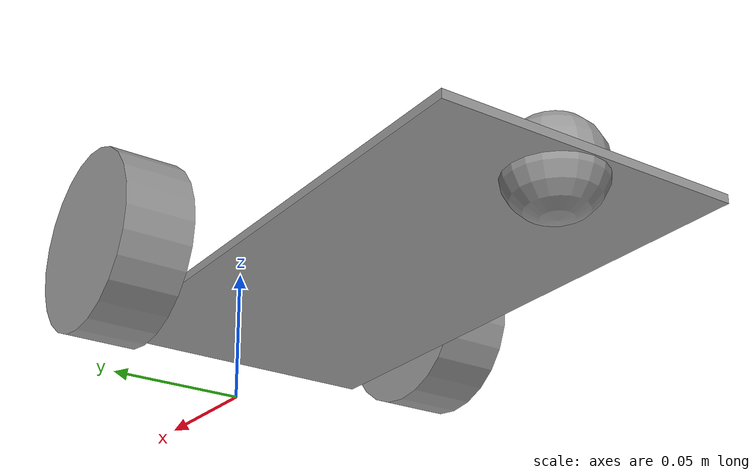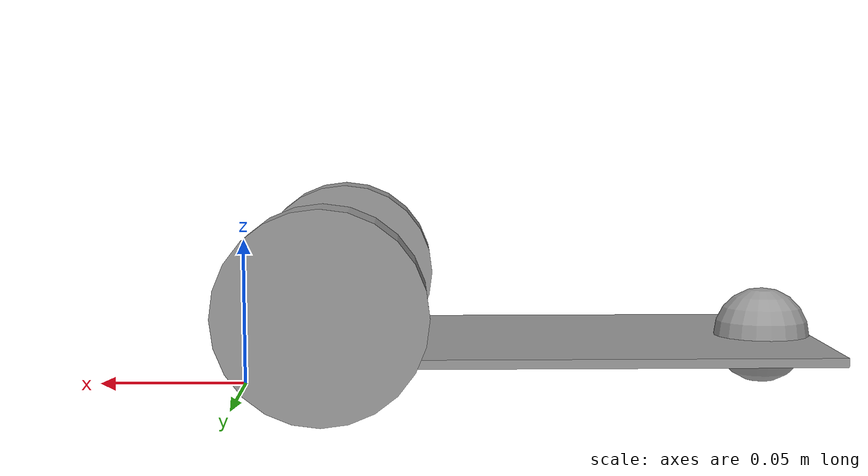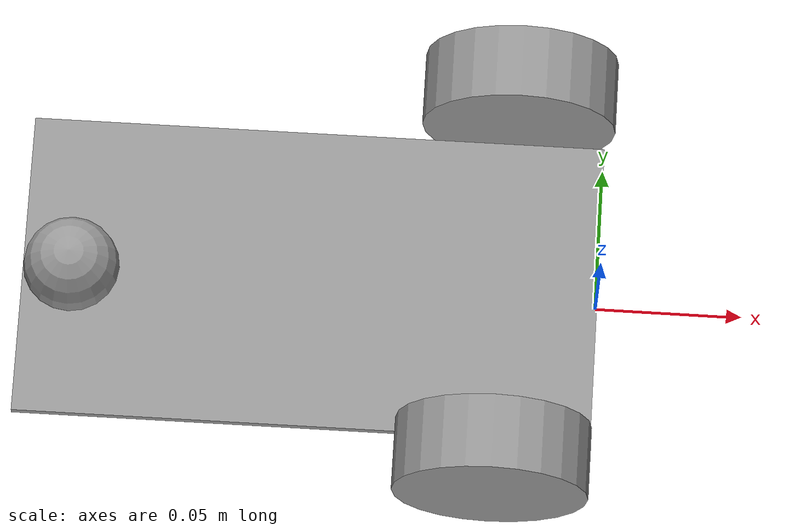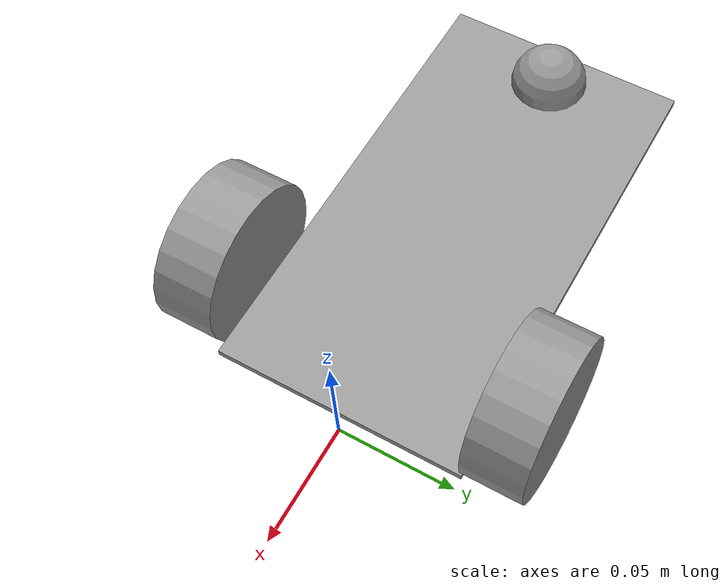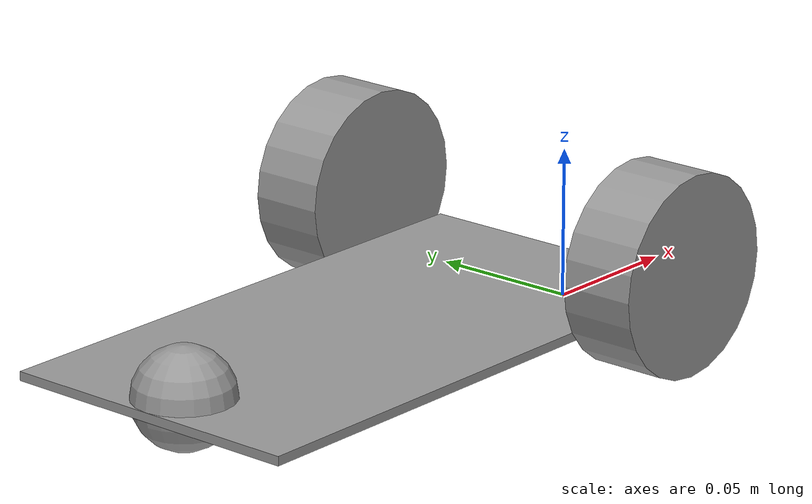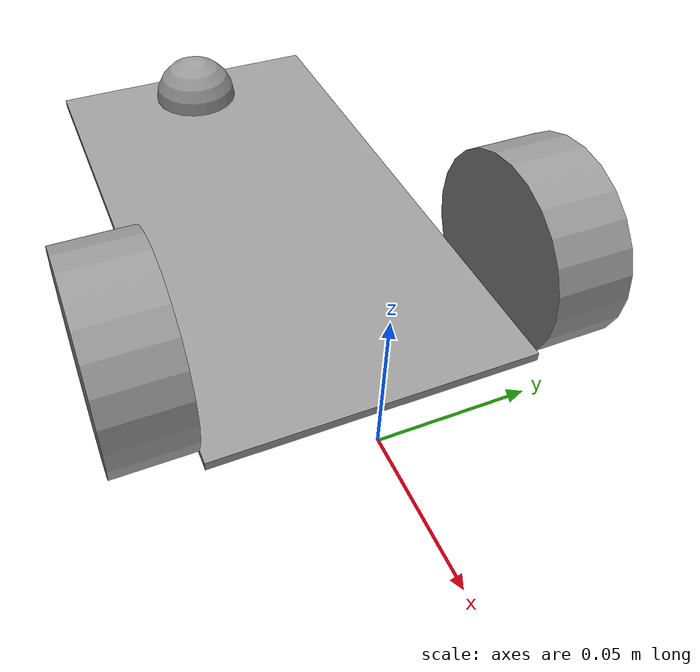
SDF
<?xml version='1.0'?>
<sdf version='1.7'>
  <model name='AptRover'>
    <link name='link_1_clone'>
      <inertial>
        <mass>1</mass>
        <inertia>
          <ixx>0.166667</ixx>
          <ixy>0</ixy>
          <ixz>0</ixz>
          <iyy>0.166667</iyy>
          <iyz>0</iyz>
          <izz>0.166667</izz>
        </inertia>
        <pose>0 0 0 0 -0 0</pose>
      </inertial>
      <pose>-0.098 0 0.014999 0 -0 0</pose>
      <gravity>1</gravity>
      <self_collide>0</self_collide>
      <kinematic>0</kinematic>
      <enable_wind>0</enable_wind>
      <visual name='visual'>
        <pose>0 0 0 0 -0 0</pose>
        <geometry>
          <box>
            <size>0.196 0.105 0.003</size>
          </box>
        </geometry>
        <material>
          <lighting>1</lighting>
          <script>
            <uri>file://media/materials/scripts/gazebo.material</uri>
            <name>Gazebo/Grey</name>
          </script>
          <shader type='pixel'>
            <normal_map>__default__</normal_map>
          </shader>
          <ambient>0.3 0.3 0.3 1</ambient>
          <diffuse>0.7 0.7 0.7 1</diffuse>
          <specular>0.01 0.01 0.01 1</specular>
          <emissive>0 0 0 1</emissive>
        </material>
        <transparency>0</transparency>
        <cast_shadows>1</cast_shadows>
      </visual>
      <collision name='collision'>
        <laser_retro>0</laser_retro>
        <max_contacts>10</max_contacts>
        <pose>0 0 0 0 -0 0</pose>
        <geometry>
          <box>
            <size>0.196 0.105 0.003</size>
          </box>
        </geometry>
        <surface>
          <friction>
            <ode>
              <mu>1</mu>
              <mu2>1</mu2>
              <fdir1>0 0 0</fdir1>
              <slip1>0</slip1>
              <slip2>0</slip2>
            </ode>
            <torsional>
              <coefficient>1</coefficient>
              <patch_radius>0</patch_radius>
              <surface_radius>0</surface_radius>
              <use_patch_radius>1</use_patch_radius>
              <ode>
                <slip>0</slip>
              </ode>
            </torsional>
          </friction>
          <bounce>
            <restitution_coefficient>0</restitution_coefficient>
            <threshold>1e+06</threshold>
          </bounce>
          <contact>
            <collide_without_contact>0</collide_without_contact>
            <collide_without_contact_bitmask>1</collide_without_contact_bitmask>
            <collide_bitmask>1</collide_bitmask>
            <ode>
              <soft_cfm>0</soft_cfm>
              <soft_erp>0.2</soft_erp>
              <kp>1e+13</kp>
              <kd>1</kd>
              <max_vel>0.01</max_vel>
              <min_depth>0</min_depth>
            </ode>
            <bullet>
              <split_impulse>1</split_impulse>
              <split_impulse_penetration_threshold>-0.01</split_impulse_penetration_threshold>
              <soft_cfm>0</soft_cfm>
              <soft_erp>0.2</soft_erp>
              <kp>1e+13</kp>
              <kd>1</kd>
            </bullet>
          </contact>
        </surface>
      </collision>
    </link>
    <link name='link_2_clone'>
      <inertial>
        <mass>1</mass>
        <inertia>
          <ixx>0.145833</ixx>
          <ixy>0</ixy>
          <ixz>0</ixz>
          <iyy>0.145833</iyy>
          <iyz>0</iyz>
          <izz>0.125</izz>
        </inertia>
        <pose>0 0 0 0 -0 0</pose>
      </inertial>
      <pose>-0.029847 0.065003 0.0329 1.5707 -0 0</pose>
      <gravity>1</gravity>
      <self_collide>0</self_collide>
      <kinematic>0</kinematic>
      <enable_wind>0</enable_wind>
      <visual name='visual'>
        <pose>0 0 0 0 -0 0</pose>
        <geometry>
          <cylinder>
            <radius>0.0329</radius>
            <length>0.025</length>
          </cylinder>
        </geometry>
        <material>
          <lighting>1</lighting>
          <script>
            <uri>file://media/materials/scripts/gazebo.material</uri>
            <name>Gazebo/Grey</name>
          </script>
          <shader type='pixel'>
            <normal_map>__default__</normal_map>
          </shader>
          <ambient>0.3 0.3 0.3 1</ambient>
          <diffuse>0.7 0.7 0.7 1</diffuse>
          <specular>0.01 0.01 0.01 1</specular>
          <emissive>0 0 0 1</emissive>
        </material>
        <transparency>0</transparency>
        <cast_shadows>1</cast_shadows>
      </visual>
      <collision name='collision'>
        <laser_retro>0</laser_retro>
        <max_contacts>10</max_contacts>
        <pose>0 0 0 0 -0 0</pose>
        <geometry>
          <cylinder>
            <radius>0.0329</radius>
            <length>0.025</length>
          </cylinder>
        </geometry>
        <surface>
          <friction>
            <ode>
              <mu>1</mu>
              <mu2>1</mu2>
              <fdir1>0 0 0</fdir1>
              <slip1>0</slip1>
              <slip2>0</slip2>
            </ode>
            <torsional>
              <coefficient>1</coefficient>
              <patch_radius>0</patch_radius>
              <surface_radius>0</surface_radius>
              <use_patch_radius>1</use_patch_radius>
              <ode>
                <slip>0</slip>
              </ode>
            </torsional>
          </friction>
          <bounce>
            <restitution_coefficient>0</restitution_coefficient>
            <threshold>1e+06</threshold>
          </bounce>
          <contact>
            <collide_without_contact>0</collide_without_contact>
            <collide_without_contact_bitmask>1</collide_without_contact_bitmask>
            <collide_bitmask>1</collide_bitmask>
            <ode>
              <soft_cfm>0</soft_cfm>
              <soft_erp>0.2</soft_erp>
              <kp>1e+13</kp>
              <kd>1</kd>
              <max_vel>0.01</max_vel>
              <min_depth>0</min_depth>
            </ode>
            <bullet>
              <split_impulse>1</split_impulse>
              <split_impulse_penetration_threshold>-0.01</split_impulse_penetration_threshold>
              <soft_cfm>0</soft_cfm>
              <soft_erp>0.2</soft_erp>
              <kp>1e+13</kp>
              <kd>1</kd>
            </bullet>
          </contact>
        </surface>
      </collision>
    </link>
    <link name='link_2_clone_0'>
      <inertial>
        <mass>1</mass>
        <inertia>
          <ixx>0.145833</ixx>
          <ixy>0</ixy>
          <ixz>0</ixz>
          <iyy>0.145833</iyy>
          <iyz>0</iyz>
          <izz>0.125</izz>
        </inertia>
        <pose>0 0 0 0 -0 0</pose>
      </inertial>
      <pose>-0.0329 -0.065003 0.0329 1.5707 -0 0</pose>
      <gravity>1</gravity>
      <self_collide>0</self_collide>
      <kinematic>0</kinematic>
      <enable_wind>0</enable_wind>
      <visual name='visual'>
        <pose>0 0 0 0 -0 0</pose>
        <geometry>
          <cylinder>
            <radius>0.0329</radius>
            <length>0.025</length>
          </cylinder>
        </geometry>
        <material>
          <lighting>1</lighting>
          <script>
            <uri>file://media/materials/scripts/gazebo.material</uri>
            <name>Gazebo/Grey</name>
          </script>
          <shader type='pixel'>
            <normal_map>__default__</normal_map>
          </shader>
          <ambient>0.3 0.3 0.3 1</ambient>
          <diffuse>0.7 0.7 0.7 1</diffuse>
          <specular>0.01 0.01 0.01 1</specular>
          <emissive>0 0 0 1</emissive>
        </material>
        <transparency>0</transparency>
        <cast_shadows>1</cast_shadows>
      </visual>
      <collision name='collision'>
        <laser_retro>0</laser_retro>
        <max_contacts>10</max_contacts>
        <pose>0 0 0 0 -0 0</pose>
        <geometry>
          <cylinder>
            <radius>0.0329</radius>
            <length>0.025</length>
          </cylinder>
        </geometry>
        <surface>
          <friction>
            <ode>
              <mu>1</mu>
              <mu2>1</mu2>
              <fdir1>0 0 0</fdir1>
              <slip1>0</slip1>
              <slip2>0</slip2>
            </ode>
            <torsional>
              <coefficient>1</coefficient>
              <patch_radius>0</patch_radius>
              <surface_radius>0</surface_radius>
              <use_patch_radius>1</use_patch_radius>
              <ode>
                <slip>0</slip>
              </ode>
            </torsional>
          </friction>
          <bounce>
            <restitution_coefficient>0</restitution_coefficient>
            <threshold>1e+06</threshold>
          </bounce>
          <contact>
            <collide_without_contact>0</collide_without_contact>
            <collide_without_contact_bitmask>1</collide_without_contact_bitmask>
            <collide_bitmask>1</collide_bitmask>
            <ode>
              <soft_cfm>0</soft_cfm>
              <soft_erp>0.2</soft_erp>
              <kp>1e+13</kp>
              <kd>1</kd>
              <max_vel>0.01</max_vel>
              <min_depth>0</min_depth>
            </ode>
            <bullet>
              <split_impulse>1</split_impulse>
              <split_impulse_penetration_threshold>-0.01</split_impulse_penetration_threshold>
              <soft_cfm>0</soft_cfm>
              <soft_erp>0.2</soft_erp>
              <kp>1e+13</kp>
              <kd>1</kd>
            </bullet>
          </contact>
        </surface>
      </collision>
    </link>
    <link name='link_3_clone'>
      <inertial>
        <mass>1</mass>
        <inertia>
          <ixx>0.1</ixx>
          <ixy>0</ixy>
          <ixz>0</ixz>
          <iyy>0.1</iyy>
          <iyz>0</iyz>
          <izz>0.1</izz>
        </inertia>
        <pose>0 0 0 0 -0 0</pose>
      </inertial>
      <pose>-0.17955 0 0.01645 0 -0 0</pose>
      <gravity>1</gravity>
      <self_collide>0</self_collide>
      <kinematic>0</kinematic>
      <enable_wind>0</enable_wind>
      <visual name='visual'>
        <pose>0 0 0 0 -0 0</pose>
        <geometry>
          <sphere>
            <radius>0.01645</radius>
          </sphere>
        </geometry>
        <material>
          <lighting>1</lighting>
          <script>
            <uri>file://media/materials/scripts/gazebo.material</uri>
            <name>Gazebo/Grey</name>
          </script>
          <shader type='pixel'>
            <normal_map>__default__</normal_map>
          </shader>
          <ambient>0.3 0.3 0.3 1</ambient>
          <diffuse>0.7 0.7 0.7 1</diffuse>
          <specular>0.01 0.01 0.01 1</specular>
          <emissive>0 0 0 1</emissive>
        </material>
        <transparency>0</transparency>
        <cast_shadows>1</cast_shadows>
      </visual>
      <collision name='collision'>
        <laser_retro>0</laser_retro>
        <max_contacts>10</max_contacts>
        <pose>0 0 0 0 -0 0</pose>
        <geometry>
          <sphere>
            <radius>0.01645</radius>
          </sphere>
        </geometry>
        <surface>
          <friction>
            <ode>
              <mu>1</mu>
              <mu2>1</mu2>
              <fdir1>0 0 0</fdir1>
              <slip1>0</slip1>
              <slip2>0</slip2>
            </ode>
            <torsional>
              <coefficient>1</coefficient>
              <patch_radius>0</patch_radius>
              <surface_radius>0</surface_radius>
              <use_patch_radius>1</use_patch_radius>
              <ode>
                <slip>0</slip>
              </ode>
            </torsional>
          </friction>
          <bounce>
            <restitution_coefficient>0</restitution_coefficient>
            <threshold>1e+06</threshold>
          </bounce>
          <contact>
            <collide_without_contact>0</collide_without_contact>
            <collide_without_contact_bitmask>1</collide_without_contact_bitmask>
            <collide_bitmask>1</collide_bitmask>
            <ode>
              <soft_cfm>0</soft_cfm>
              <soft_erp>0.2</soft_erp>
              <kp>1e+13</kp>
              <kd>1</kd>
              <max_vel>0.01</max_vel>
              <min_depth>0</min_depth>
            </ode>
            <bullet>
              <split_impulse>1</split_impulse>
              <split_impulse_penetration_threshold>-0.01</split_impulse_penetration_threshold>
              <soft_cfm>0</soft_cfm>
              <soft_erp>0.2</soft_erp>
              <kp>1e+13</kp>
              <kd>1</kd>
            </bullet>
          </contact>
        </surface>
      </collision>
    </link>
    <joint name='link_1_clone_JOINT_1' type='revolute'>
      <parent>link_1_clone</parent>
      <child>link_2_clone_0</child>
      <pose>0 0 0 0 -0 0</pose>
      <axis>
        <xyz>-0 -0 -1</xyz>
        <limit>
          <lower>-1.79769e+308</lower>
          <upper>1.79769e+308</upper>
          <effort>-1</effort>
          <velocity>-1</velocity>
        </limit>
        <dynamics>
          <spring_reference>0</spring_reference>
          <spring_stiffness>0</spring_stiffness>
          <damping>0</damping>
        </dynamics>
      </axis>
      <physics>
        <ode>
          <limit>
            <cfm>0</cfm>
            <erp>0.2</erp>
          </limit>
          <suspension>
            <cfm>0</cfm>
            <erp>0.2</erp>
          </suspension>
        </ode>
      </physics>
    </joint>
    <joint name='link_1_clone_JOINT_2' type='revolute'>
      <parent>link_1_clone</parent>
      <child>link_2_clone</child>
      <pose>0 0 0 0 -0 0</pose>
      <axis>
        <xyz>0 0 1</xyz>
        <limit>
          <lower>-1.79769e+308</lower>
          <upper>1.79769e+308</upper>
          <effort>-1</effort>
          <velocity>-1</velocity>
        </limit>
        <dynamics>
          <spring_reference>0</spring_reference>
          <spring_stiffness>0</spring_stiffness>
          <damping>0</damping>
        </dynamics>
      </axis>
      <physics>
        <ode>
          <limit>
            <cfm>0</cfm>
            <erp>0.2</erp>
          </limit>
          <suspension>
            <cfm>0</cfm>
            <erp>0.2</erp>
          </suspension>
        </ode>
      </physics>
    </joint>
    <joint name='link_1_clone_JOINT_3' type='ball'>
      <parent>link_1_clone</parent>
      <child>link_3_clone</child>
      <pose>0 0 0 0 -0 0</pose>
      <physics>
        <ode>
          <limit>
            <cfm>0</cfm>
            <erp>0.2</erp>
          </limit>
          <suspension>
            <cfm>0</cfm>
            <erp>0.2</erp>
          </suspension>
        </ode>
      </physics>
    </joint>
    <static>0</static>
    <allow_auto_disable>1</allow_auto_disable>
  </model>
</sdf>
